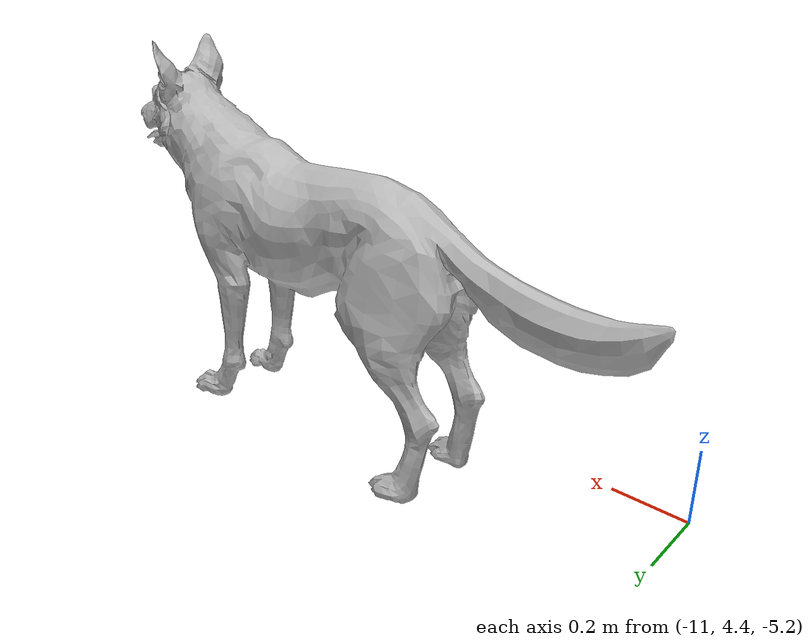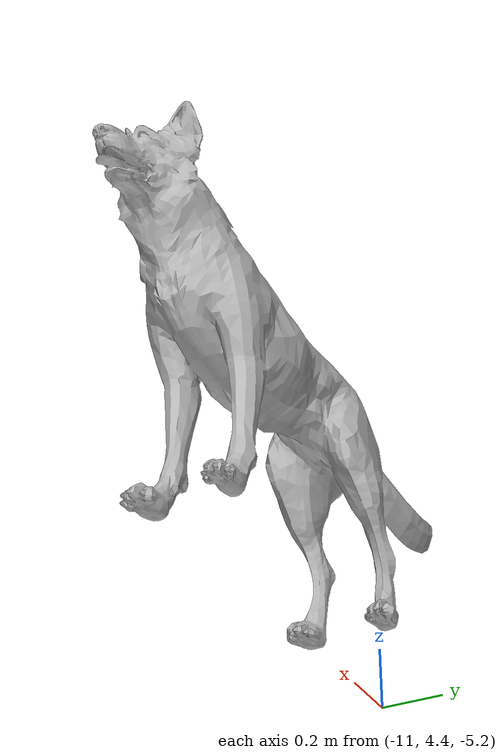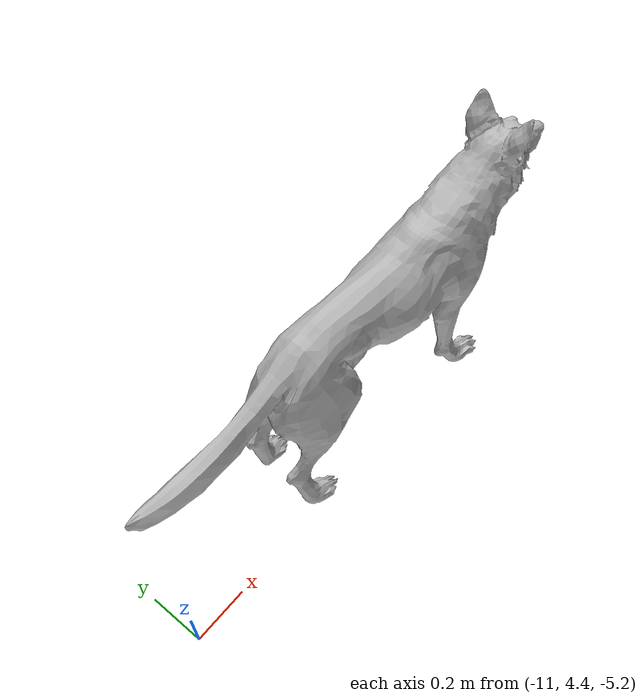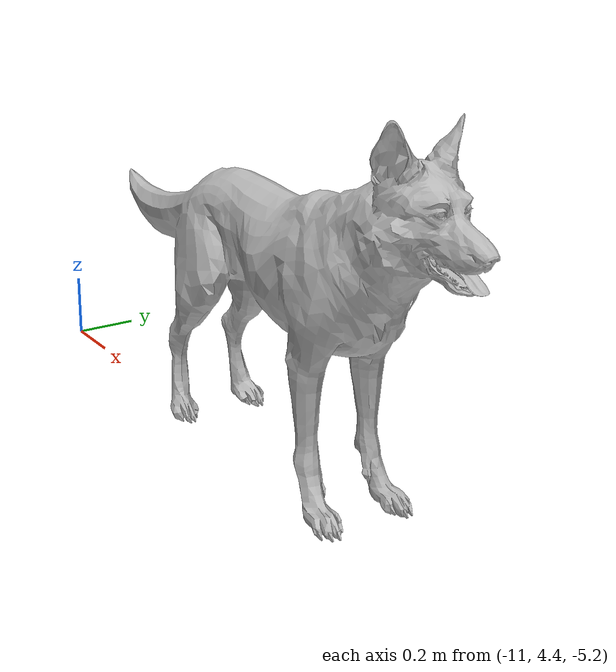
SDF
<?xml version="1.0" ?>
<sdf version="1.5">
  <model name="dog" static="true">
    <link name="dog">
      <inertial>
        <pose>0.03 0.0 0.0035 0.0 0.0 0.0 </pose>
        <mass value="10.0"/>
        <inertia>
          <ixx>0.05</ixx>
          <ixy>0.0</ixy>
          <ixz>0.0</ixz>
          <iyy>0.05</iyy>
          <iyz>0.0</iyz>
          <izz>0.05</izz>
        </inertia>
      </inertial>
      <collision name="dog_collision">
          <geometry>
              <mesh >
                <uri>model://dog/meshes/dog.dae</uri>
              </mesh>
          </geometry>
      </collision>
      <visual name="dog_visual" cast_shadows="false">
          <geometry>
            <mesh>
              <uri>model://dog/meshes/dog.dae</uri>
            </mesh>
          </geometry>
      </visual>
  </link>
  </model>
</sdf>
